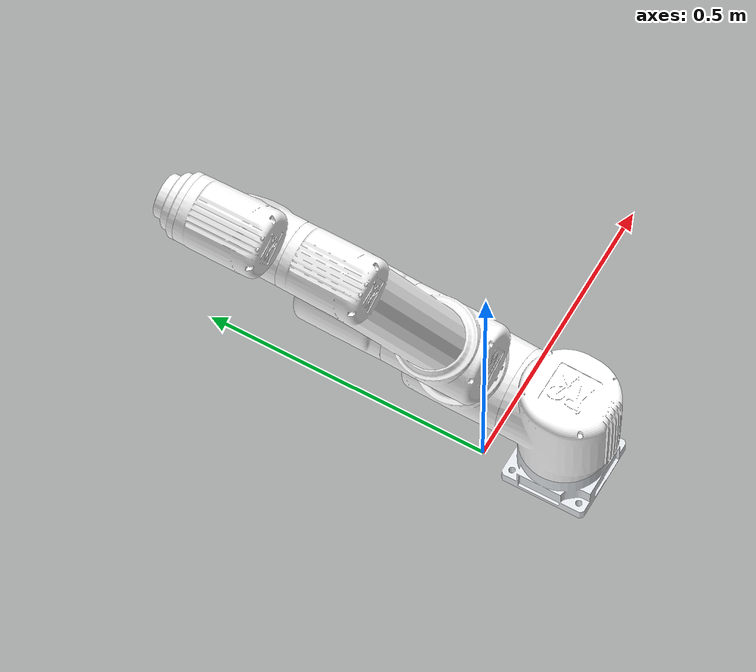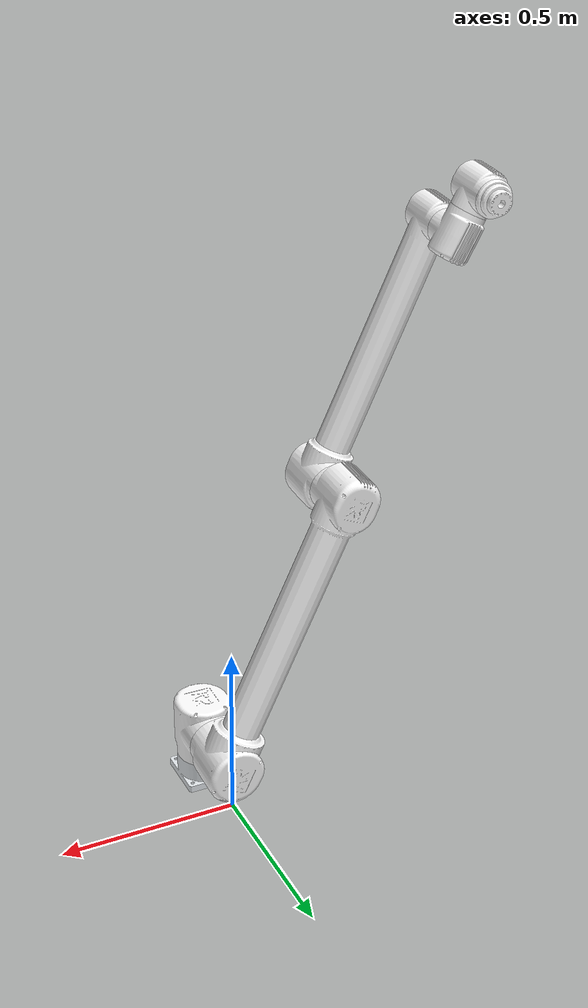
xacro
<?xml version="1.0" ?>
<!-- |    This document was autogenerated by xacro from YT.urdf                        | -->
<!-- |    EDITING THIS FILE BY HAND IS NOT RECOMMENDED                                 | -->
<robot name="YT">
  <link name="base_link">
    <inertial>
      <origin rpy="0 0 0" xyz="0.029803 0.073083 0.1288"/>
      <mass value="3.71"/>
      <inertia ixx="0.0073681" ixy="1.6609E-05" ixz="2.915E-05" iyy="0.011119" iyz="-2.9108E-05" izz="0.0073471"/>
    </inertial>
    <visual>
      <origin rpy="0 0 0" xyz="0 0 0"/>
      <geometry>
        <mesh filename="package://YT/meshes/base_link.STL"/>
      </geometry>
      <material name="">
        <color rgba="0.89412 0.91373 0.92941 1"/>
      </material>
    </visual>
    <collision>
      <origin rpy="0 0 0" xyz="0 0 0"/>
      <geometry>
        <mesh filename="package://YT/meshes/base_link.STL"/>
      </geometry>
    </collision>
  </link>
  <link name="link1">
    <inertial>
      <origin rpy="0 0 0" xyz="0.0831710226342745 -0.226900321699955 -0.559609398580625"/>
      <mass value="14.3431138258698"/>
      <inertia ixx="4.10403897461197" ixy="-0.0130192531909799" ixz="0.0088336084502807" iyy="3.59620627632839" iyz="-1.43876195561687" izz="0.713439719889236"/>
    </inertial>
    <visual>
      <origin rpy="0 0 0" xyz="0 0 0"/>
      <geometry>
        <mesh filename="package://YT/meshes/link1.STL"/>
      </geometry>
      <material name="">
        <color rgba="1 1 1 1"/>
      </material>
    </visual>
    <collision>
      <origin rpy="0 0 0" xyz="0 0 0"/>
      <geometry>
        <mesh filename="package://YT/meshes/link1.STL"/>
      </geometry>
    </collision>
  </link>
  <joint name="joint1" type="continuous">
    <origin rpy="3.1416 0 1.5477" xyz="0.029712 -0.12887 0.11217"/>
    <parent link="base_link"/>
    <child link="link1"/>
    <axis xyz="0 0 -1"/>
    <limit effort="100" lower="-3.14" upper="3.14" velocity="2.09"/>
  </joint>
  <link name="link2">
    <inertial>
      <origin rpy="0 0 0" xyz="0.401489551832187 -2.79110068390764E-13 -0.0977402490718507"/>
      <mass value="5.96228825379761"/>
      <inertia ixx="0.00837772168861975" ixy="-3.61634575841356E-16" ixz="-2.15092158493968E-16" iyy="0.238464328063253" iyz="-1.30104260698261E-18" izz="0.238464328063253"/>
    </inertial>
    <visual>
      <origin rpy="0 0 0" xyz="0 0 0"/>
      <geometry>
        <mesh filename="package://YT/meshes/link2.STL"/>
      </geometry>
      <material name="">
        <color rgba="1 1 1 1"/>
      </material>
    </visual>
    <collision>
      <origin rpy="0 0 0" xyz="0 0 0"/>
      <geometry>
        <mesh filename="package://YT/meshes/link2.STL"/>
      </geometry>
    </collision>
  </link>
  <joint name="joint2" type="continuous">
    <origin rpy="1.5708 1.1478 -1.5708" xyz="0.07426 0 -0.08725"/>
    <parent link="link1"/>
    <child link="link2"/>
    <axis xyz="0 0 1"/>
    <limit effort="100" lower="-3.14" upper="3.14" velocity="2.09"/>
  </joint>
  <link name="link3">
    <inertial>
      <origin rpy="0 0 0" xyz="0.36448106708536 -7.96723798046628E-14 -0.0465597509284719"/>
      <mass value="4.48279165196407"/>
      <inertia ixx="0.00516955480672141" ixy="4.81058280470332E-16" ixz="1.13986917777906E-16" iyy="0.145695320539262" iyz="-1.0842021724855E-18" izz="0.145695320539262"/>
    </inertial>
    <visual>
      <origin rpy="0 0 0" xyz="0 0 0"/>
      <geometry>
        <mesh filename="package://YT/meshes/link3.STL"/>
      </geometry>
      <material name="">
        <color rgba="1 1 1 1"/>
      </material>
    </visual>
    <collision>
      <origin rpy="0 0 0" xyz="0 0 0"/>
      <geometry>
        <mesh filename="package://YT/meshes/link3.STL"/>
      </geometry>
    </collision>
  </link>
  <joint name="joint3" type="continuous">
    <origin rpy="3.1416 0 -0.0040095" xyz="0.80386 0 0"/>
    <parent link="link2"/>
    <child link="link3"/>
    <axis xyz="0 0 1"/>
    <limit effort="100" lower="-2.79" upper="2.79" velocity="2.09"/>
  </joint>
  <link name="link4">
    <inertial>
      <origin rpy="0 0 0" xyz="0.00899169994183825 -0.0873295680553726 -1.00126005959918"/>
      <mass value="14.3431138258698"/>
      <inertia ixx="4.10403897461197" ixy="0.0156514936278273" ixz="0.00160135540142995" iyy="4.14920501547595" iyz="-0.412385849010458" izz="0.160440980741678"/>
    </inertial>
    <visual>
      <origin rpy="0 0 0" xyz="0 0 0"/>
      <geometry>
        <mesh filename="package://YT/meshes/link4.STL"/>
      </geometry>
      <material name="">
        <color rgba="1 1 1 1"/>
      </material>
    </visual>
    <collision>
      <origin rpy="0 0 0" xyz="0 0 0"/>
      <geometry>
        <mesh filename="package://YT/meshes/link4.STL"/>
      </geometry>
    </collision>
  </link>
  <joint name="joint4" type="continuous">
    <origin rpy="0.07519 1.5708 0" xyz="0.72495 0 0.017903"/>
    <parent link="link3"/>
    <child link="link4"/>
    <axis xyz="1 0 0"/>
    <limit effort="100" lower="-3.14" upper="3.14" velocity="3.14"/>
  </joint>
  <link name="link5">
    <inertial>
      <origin rpy="0 0 0" xyz="1.09340042571024 0.0861053680543278 -0.0670318590525401"/>
      <mass value="14.3431138258698"/>
      <inertia ixx="0.160440980741675" ixy="-0.412285811011491" ixz="0.00922295190187635" iyy="4.14976804157174" iyz="0.0148061674564304" izz="4.10347594851619"/>
    </inertial>
    <visual>
      <origin rpy="0 0 0" xyz="0 0 0"/>
      <geometry>
        <mesh filename="package://YT/meshes/link5.STL"/>
      </geometry>
      <material name="">
        <color rgba="1 1 1 1"/>
      </material>
    </visual>
    <collision>
      <origin rpy="0 0 0" xyz="0 0 0"/>
      <geometry>
        <mesh filename="package://YT/meshes/link5.STL"/>
      </geometry>
    </collision>
  </link>
  <joint name="joint5" type="continuous">
    <origin rpy="3.1231 1.5708 0" xyz="-0.056437 0 0.09214"/>
    <parent link="link4"/>
    <child link="link5"/>
    <axis xyz="1 0 0"/>
    <limit effort="100" lower="-3.14" upper="3.14" velocity="3.14"/>
  </joint>
  <link name="link6">
    <inertial>
      <origin rpy="0 0 0" xyz="-2.48920328793645E-10 0.0148658456403678 1.90392097254577E-05"/>
      <mass value="0.188062299506066"/>
      <inertia ixx="0.00010694993147244" ixy="4.94732512284877E-13" ixz="-1.18810293822814E-12" iyy="0.000170031690069996" iyz="-5.55503175949622E-08" izz="0.000107056263617998"/>
    </inertial>
    <visual>
      <origin rpy="0 0 0" xyz="0 0 0"/>
      <geometry>
        <mesh filename="package://YT/meshes/link6.STL"/>
      </geometry>
      <material name="">
        <color rgba="1 1 1 1"/>
      </material>
    </visual>
    <collision>
      <origin rpy="0 0 0" xyz="0 0 0"/>
      <geometry>
        <mesh filename="package://YT/meshes/link6.STL"/>
      </geometry>
    </collision>
  </link>
  <joint name="joint6" type="continuous">
    <origin rpy="1.5708 0 -1.7402" xyz="-0.02876 0 0.065129"/>
    <parent link="link5"/>
    <child link="link6"/>
    <axis xyz="0 1 0"/>
    <limit effort="100" lower="-6.28" upper="6.28" velocity="3.14"/>
  </joint>
</robot>
